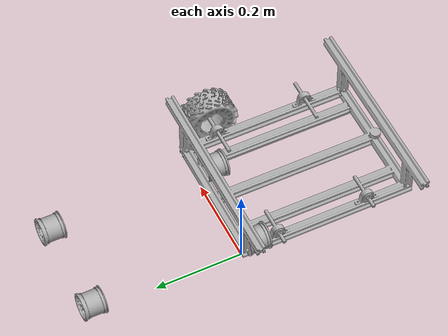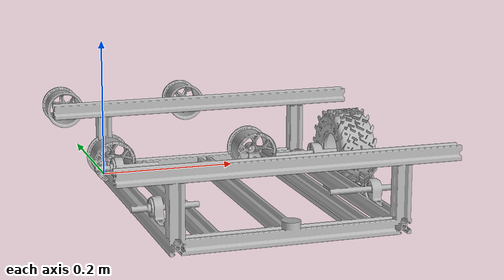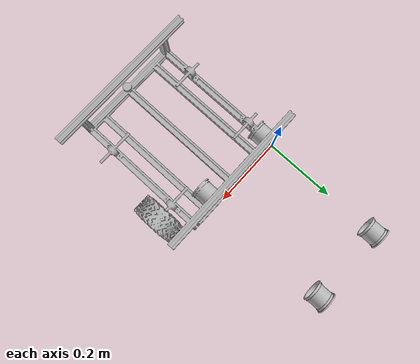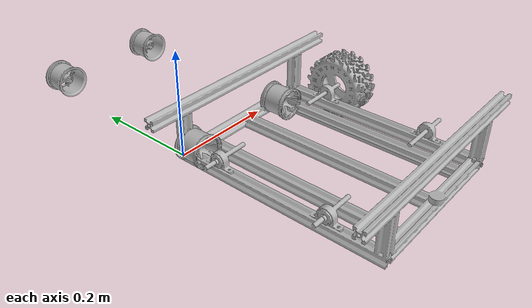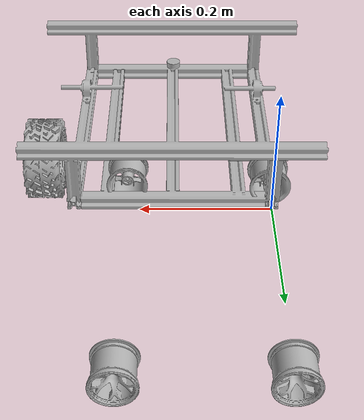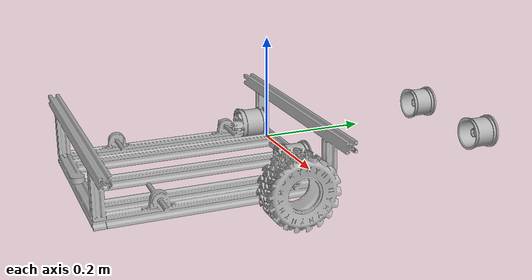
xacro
<?xml version="1.0" ?>
<robot name="perceptron_robot" xmlns:xacro="http://www.ros.org/wiki/xacro">

  <!-- Arguments -->
<xacro:include filename="$(find perceptron_robot_description)/urdf/materials.xacro" />
<xacro:arg name="is_sim" default="true"/>
<xacro:arg name="gazebo_controllers" default="$(find perceptron_robot_control)/config/controllers.yaml"/>

<link name="base_link">

  <inertial>
    <origin xyz="0.10235518948158412 0.15768644923066177 0.03531321960603257" rpy="0 0 0"/>
    <mass value="5.28321629585233"/>
    <inertia ixx="0.084731" iyy="0.132613" izz="0.201957" ixy="-0.000161" iyz="0.000101" ixz="-0.0"/>
  </inertial>
  <visual>
    <origin xyz="0 0 0" rpy="0 0 0"/>
    <geometry>
      <mesh filename="/home/yadi/perceptron/src/perceptron_robot_description/meshes/base_link.stl" scale="0.001 0.001 0.001"/>
    </geometry>
    <material name="silver"/>
  </visual>
  <collision>
    <origin xyz="0 0 0" rpy="0 0 0"/>
    <geometry>
      <mesh filename="/home/yadi/perceptron/src/perceptron_robot_description/meshes/base_link.stl" scale="0.001 0.001 0.001"/>
    </geometry>
  </collision>
</link>

<link name="rim_1_1">
  <inertial>
    <origin xyz="-1.4986378178705184e-07 0.0015115848240151789 -4.1318648651145207e-07" rpy="0 0 0"/>
    <mass value="0.16214137289777292"/>
    <inertia ixx="9e-05" iyy="0.000105" izz="9e-05" ixy="-0.0" iyz="0.0" ixz="-0.0"/>
  </inertial>
  <visual>
    <origin xyz="-0.003148 0.040234 -0.032423" rpy="0 0 0"/>
    <geometry>
      <mesh filename="/home/yadi/perceptron/src/perceptron_robot_description/meshes/rim_1_1.stl" scale="0.001 0.001 0.001"/>
    </geometry>
    <material name="silver"/>
  </visual>
  <collision>
    <origin xyz="-0.003148 0.040234 -0.032423" rpy="0 0 0"/>
    <geometry>
      <mesh filename="/home/yadi/perceptron/src/perceptron_robot_description/meshes/rim_1_1.stl" scale="0.001 0.001 0.001"/>
    </geometry>
  </collision>
</link>

<link name="rim_1_5">
  <inertial>
    <origin xyz="-2.269742116478568e-09 -0.008488317094600996 -2.73853864800333e-07" rpy="0 0 0"/>
    <mass value="0.16214137289777292"/>
    <inertia ixx="9e-05" iyy="0.000105" izz="9e-05" ixy="-0.0" iyz="0.0" ixz="-0.0"/>
  </inertial>
  <visual>
    <origin xyz="-0.2191 0.035 -0.0314" rpy="0 0 0"/>
    <geometry>
      <mesh filename="/home/yadi/perceptron/src/perceptron_robot_description/meshes/rim_1_5.stl" scale="0.001 0.001 0.001"/>
    </geometry>
    <material name="silver"/>
  </visual>
  <collision>
    <origin xyz="-0.2191 0.035 -0.0314" rpy="0 0 0"/>
    <geometry>
      <mesh filename="/home/yadi/perceptron/src/perceptron_robot_description/meshes/rim_1_5.stl" scale="0.001 0.001 0.001"/>
    </geometry>
  </collision>
</link>

<link name="rim_1_6">
  <inertial>
    <origin xyz="6.199178303502306e-09 0.008488317094601128 -2.73853864800333e-07" rpy="0 0 0"/>
    <mass value="0.16214137289777292"/>
    <inertia ixx="9e-05" iyy="0.000105" izz="9e-05" ixy="-0.0" iyz="-0.0" ixz="0.0"/>
  </inertial>
  <visual>
    <origin xyz="-0.0051 -0.34 -0.0314" rpy="0 0 0"/>
    <geometry>
      <mesh filename="/home/yadi/perceptron/src/perceptron_robot_description/meshes/rim_1_6.stl" scale="0.001 0.001 0.001"/>
    </geometry>
    <material name="silver"/>
  </visual>
  <collision>
    <origin xyz="-0.0051 -0.34 -0.0314" rpy="0 0 0"/>
    <geometry>
      <mesh filename="/home/yadi/perceptron/src/perceptron_robot_description/meshes/rim_1_6.stl" scale="0.001 0.001 0.001"/>
    </geometry>
  </collision>
</link>

<link name="rim_1_7">
  <inertial>
    <origin xyz="-2.2697420887229924e-09 0.008488317094601128 2.724501751774633e-07" rpy="0 0 0"/>
    <mass value="0.16214137289777292"/>
    <inertia ixx="9e-05" iyy="0.000105" izz="9e-05" ixy="0.0" iyz="0.0" ixz="0.0"/>
  </inertial>
  <visual>
    <origin xyz="-0.2201 -0.34 -0.0314" rpy="0 0 0"/>
    <geometry>
      <mesh filename="/home/yadi/perceptron/src/perceptron_robot_description/meshes/rim_1_7.stl" scale="0.001 0.001 0.001"/>
    </geometry>
    <material name="silver"/>
  </visual>
  <collision>
    <origin xyz="-0.2201 -0.34 -0.0314" rpy="0 0 0"/>
    <geometry>
      <mesh filename="/home/yadi/perceptron/src/perceptron_robot_description/meshes/rim_1_7.stl" scale="0.001 0.001 0.001"/>
    </geometry>
  </collision>
</link>

<link name="tyre_1">
  <inertial>
    <origin xyz="0.03140017357281477 -0.4827348354516158 -0.15699984818745197" rpy="0 0 0"/>
    <mass value="0.5502920703903658"/>
    <inertia ixx="0.00102" iyy="0.001663" izz="0.00102" ixy="0.0" iyz="0.0" ixz="-0.0"/>
  </inertial>
  <visual>
    <origin xyz="-0.1877 -0.4406 -0.1884" rpy="0 0 0"/>
    <geometry>
      <mesh filename="/home/yadi/perceptron/src/perceptron_robot_description/meshes/tyre_1.stl" scale="0.001 0.001 0.001"/>
    </geometry>
    <material name="silver"/>
  </visual>
  <collision>
    <origin xyz="-0.1877 -0.4406 -0.1884" rpy="0 0 0"/>
    <geometry>
      <mesh filename="/home/yadi/perceptron/src/perceptron_robot_description/meshes/tyre_1.stl" scale="0.001 0.001 0.001"/>
    </geometry>
  </collision>
</link>

<link name="tyre_5">
  <inertial>
    <origin xyz="0.032423025978775236 -0.6984812629814025 -0.12346598752007373" rpy="0 0 0"/>
    <mass value="0.5502920703903658"/>
    <inertia ixx="0.00102" iyy="0.001663" izz="0.00102" ixy="0.0" iyz="0.0" ixz="-0.0"/>
  </inertial>
  <visual>
    <origin xyz="0.029275 -0.661318 -0.155889" rpy="0 0 0"/>
    <geometry>
      <mesh filename="/home/yadi/perceptron/src/perceptron_robot_description/meshes/tyre_5.stl" scale="0.001 0.001 0.001"/>
    </geometry>
    <material name="silver"/>
  </visual>
  <collision>
    <origin xyz="0.029275 -0.661318 -0.155889" rpy="0 0 0"/>
    <geometry>
      <mesh filename="/home/yadi/perceptron/src/perceptron_robot_description/meshes/tyre_5.stl" scale="0.001 0.001 0.001"/>
    </geometry>
  </collision>
</link>

<link name="tyre_6">
  <inertial>
    <origin xyz="0.03140017357281516 0.4819006200792817 0.5043001518125478" rpy="0 0 0"/>
    <mass value="0.5502920703903658"/>
    <inertia ixx="0.00102" iyy="0.001663" izz="0.00102" ixy="0.0" iyz="0.0" ixz="-0.0"/>
  </inertial>
  <visual>
    <origin xyz="-0.1887 0.1346 0.4729" rpy="0 0 0"/>
    <geometry>
      <mesh filename="/home/yadi/perceptron/src/perceptron_robot_description/meshes/tyre_6.stl" scale="0.001 0.001 0.001"/>
    </geometry>
    <material name="silver"/>
  </visual>
  <collision>
    <origin xyz="-0.1887 0.1346 0.4729" rpy="0 0 0"/>
    <geometry>
      <mesh filename="/home/yadi/perceptron/src/perceptron_robot_description/meshes/tyre_6.stl" scale="0.001 0.001 0.001"/>
    </geometry>
  </collision>
</link>

<link name="tyre_7">
  <inertial>
    <origin xyz="-0.031399826427185265 0.6964006200792815 -0.504299848187452" rpy="0 0 0"/>
    <mass value="0.5502920703903658"/>
    <inertia ixx="0.00102" iyy="0.001663" izz="0.00102" ixy="0.0" iyz="0.0" ixz="-0.0"/>
  </inertial>
  <visual>
    <origin xyz="-0.0365 0.3496 -0.5357" rpy="0 0 0"/>
    <geometry>
      <mesh filename="/home/yadi/perceptron/src/perceptron_robot_description/meshes/tyre_7.stl" scale="0.001 0.001 0.001"/>
    </geometry>
    <material name="silver"/>
  </visual>
  <collision>
    <origin xyz="-0.0365 0.3496 -0.5357" rpy="0 0 0"/>
    <geometry>
      <mesh filename="/home/yadi/perceptron/src/perceptron_robot_description/meshes/tyre_7.stl" scale="0.001 0.001 0.001"/>
    </geometry>
  </collision>
</link>

<joint name="right_back" type="continuous">
  <origin xyz="0.003148 -0.040234 0.032423" rpy="0 0 0"/>
  <parent link="base_link"/>
  <child link="rim_1_1"/>
  <axis xyz="0.0 1.0 0.0"/>
</joint>

<joint name="right_front" type="continuous">
  <origin xyz="0.2191 -0.035 0.0314" rpy="0 0 0"/>
  <parent link="base_link"/>
  <child link="rim_1_5"/>
  <axis xyz="0.0 1.0 0.0"/>
</joint>

<joint name="left_back" type="continuous">
  <origin xyz="0.0051 0.34 0.0314" rpy="0 0 0"/>
  <parent link="base_link"/>
  <child link="rim_1_6"/>
  <axis xyz="0.0 1.0 0.0"/>
</joint>

<joint name="left_front" type="continuous">
  <origin xyz="0.2201 0.34 0.0314" rpy="0 0 0"/>
  <parent link="base_link"/>
  <child link="rim_1_7"/>
  <axis xyz="-0.0 1.0 0.0"/>
</joint>

<joint name="Rigid17" type="fixed">
  <origin xyz="-0.0314 0.4756 0.157" rpy="0 0 0"/>
  <parent link="rim_1_5"/>
  <child link="tyre_1"/>
</joint>

<joint name="Rigid18" type="fixed">
  <origin xyz="-0.032423 0.701552 0.123466" rpy="0 0 0"/>
  <parent link="rim_1_1"/>
  <child link="tyre_5"/>
</joint>

<joint name="Rigid19" type="fixed">
  <origin xyz="-0.0314 -0.4746 -0.5043" rpy="0 0 0"/>
  <parent link="rim_1_7"/>
  <child link="tyre_6"/>
</joint>

<joint name="Rigid20" type="fixed">
  <origin xyz="0.0314 -0.6896 0.5043" rpy="0 0 0"/>
  <parent link="rim_1_6"/>
  <child link="tyre_7"/>
</joint>

<!-- Add this block here for ros2_control with mock hardware -->
<xacro:if value="$(arg is_sim)">
    <!-- Gazebo version -->
    <ros2_control name="gazebo_ros2_control" type="system">
      <hardware>
        <plugin>gazebo_ros2_control/GazeboSystem</plugin>
        <param name="parameters">$(arg gazebo_controllers)</param>
      </hardware>
      <joint name="right_back">
        <command_interface name="velocity"/>
        <state_interface name="position"/>
        <state_interface name="velocity"/>
      </joint>
      <joint name="right_front">
        <command_interface name="velocity"/>
        <state_interface name="position"/>
        <state_interface name="velocity"/>
      </joint>
      <joint name="left_front">
        <command_interface name="velocity"/>
        <state_interface name="position"/>
        <state_interface name="velocity"/>
      </joint>
      <joint name="left_back">
        <command_interface name="velocity"/>
        <state_interface name="position"/>
        <state_interface name="velocity"/>
      </joint>
    </ros2_control>

    <gazebo>
      <plugin filename="libgazebo_ros2_control.so" name="gazebo_ros2_control">
        <parameters>$(arg gazebo_controllers)</parameters>
      </plugin>
    </gazebo>
  </xacro:if>

<xacro:unless value="$(arg is_sim)">
    <!-- Mock hardware for RViz (no physics) -->
    <ros2_control name="mock_robot" type="system">
      <hardware>
        <plugin>mock_components/GenericSystem</plugin>
        <param name="calculate_dynamics">true</param>

      </hardware>

      <joint name="right_back">
        <command_interface name="velocity"/>
        <state_interface name="position"/>
        <state_interface name="velocity"/>
      </joint>
      <joint name="right_front">
        <command_interface name="velocity"/>
        <state_interface name="position"/>
        <state_interface name="velocity"/>
      </joint>
      <joint name="left_front">
        <command_interface name="velocity"/>
        <state_interface name="position"/>
        <state_interface name="velocity"/>
      </joint>
      <joint name="left_back">
        <command_interface name="velocity"/>
        <state_interface name="position"/>
        <state_interface name="velocity"/>
      </joint>
    </ros2_control>
  </xacro:unless>
</robot>

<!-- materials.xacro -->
<robot name="perceptron_robot" xmlns:xacro="http://www.ros.org/wiki/xacro" >

<material name="silver">
  <color rgba="0.700 0.700 0.700 1.000"/>
</material>

</robot>
